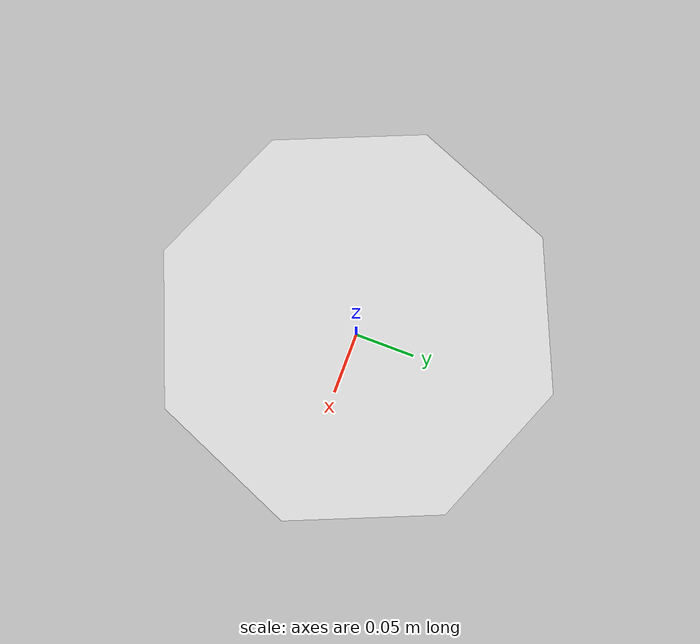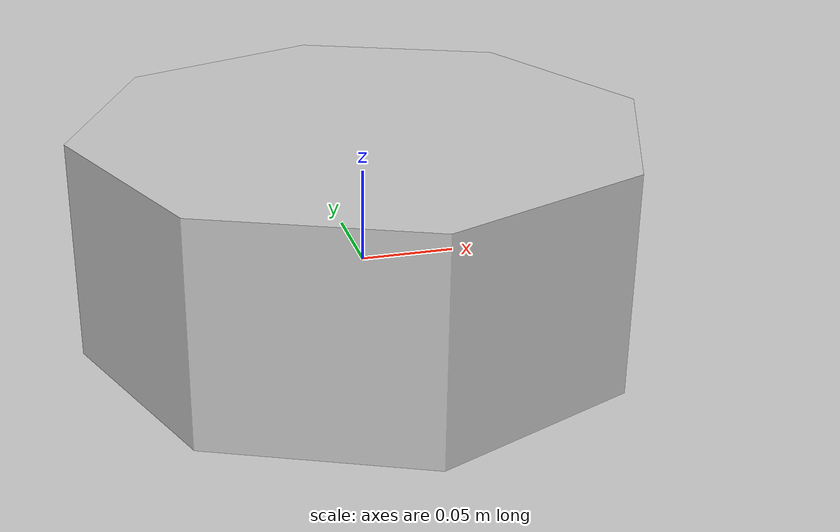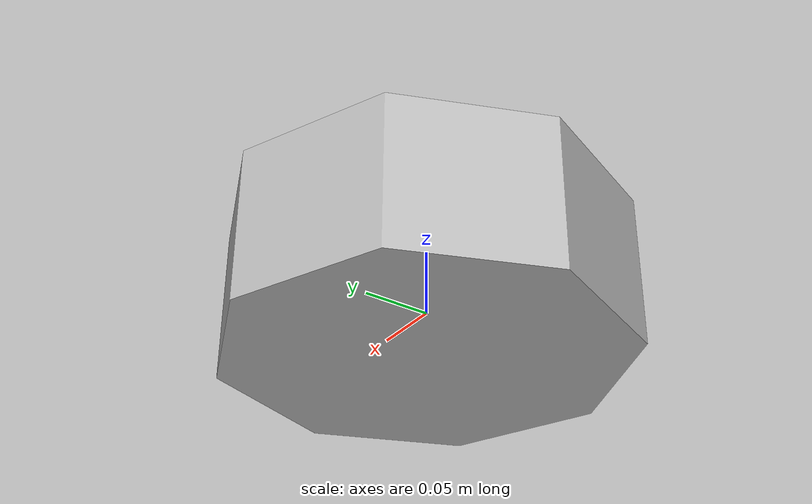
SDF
<?xml version="1.0" ?>
<sdf version="1.5">

    <model name="target">

        <link name="target_base_link">

            <inertial>
                <pose>0 -0.1 0.95 0 0 0</pose>
                <mass>1000</mass>
                <inertia>
                    <ixx>24.88</ixx>
                    <ixy>0</ixy>
                    <ixz>0</ixz>
                    <iyy>25.73</iyy>
                    <iyz>0</iyz>
                    <izz>2.48</izz>
                </inertia>
            </inertial>

            <collision name="bottom">
                <pose>0 0 0.01 0 0 1.57</pose>
                <geometry>
                    <box>
                        <size>0.5 0.35 0.02</size>
                    </box>
                </geometry>
                <surface>
                    <friction>
                        <ode>
                            <mu>0.</mu>
                            <mu2>0.</mu2>
                        </ode>
                    </friction>
                </surface>
            </collision>

            <collision name="person">
                <pose>0 0 0.02 0 0 1.57</pose>
                <geometry>
                    <mesh>
                        <uri>model://target/meshes/target.dae</uri>
                    </mesh>
                </geometry>
            </collision>

            <visual name="visual">
                <pose>0 0 0.02 0 0 1.57</pose>
                <geometry>
                    <mesh>
                        <uri>model://target/meshes/target.dae</uri>
                    </mesh>
                </geometry>
            </visual>

        </link>

    </model>

</sdf>
